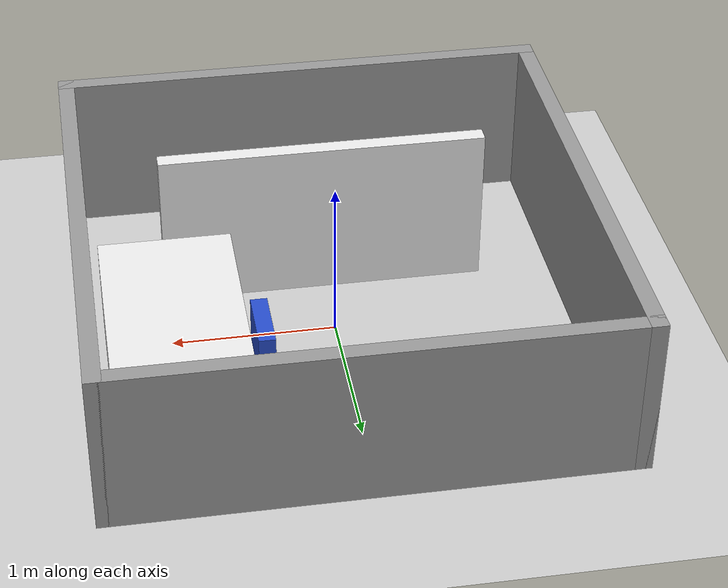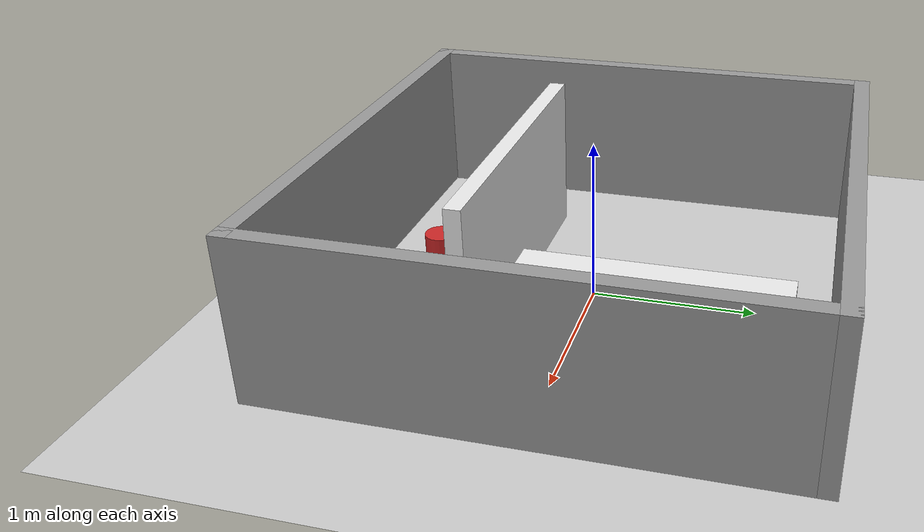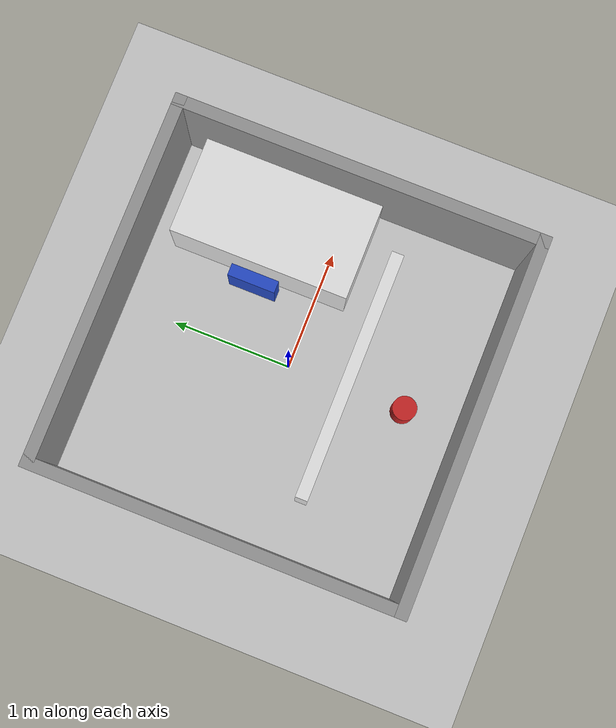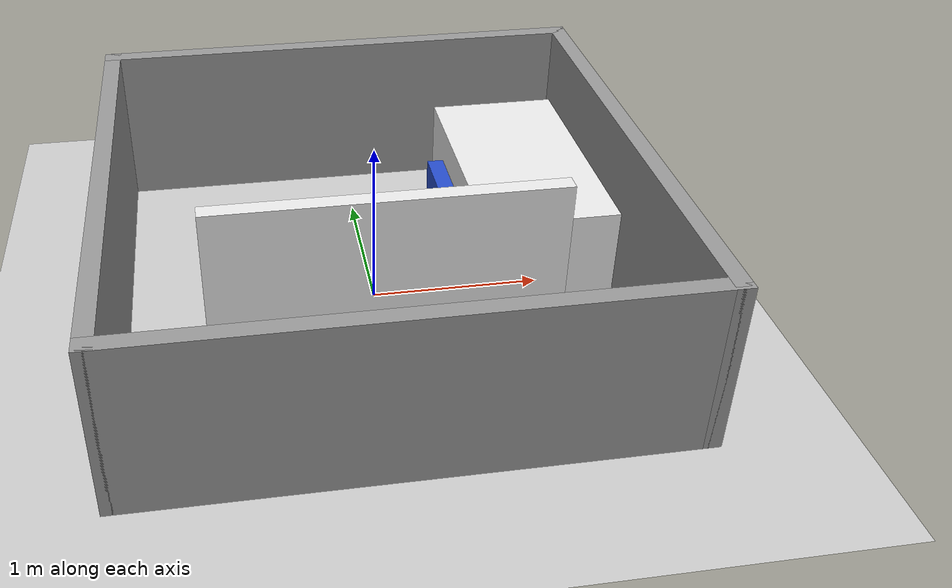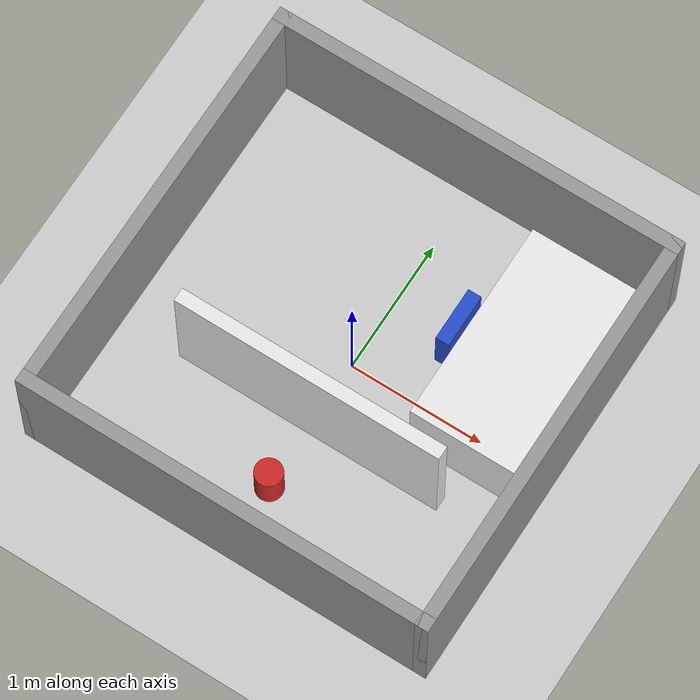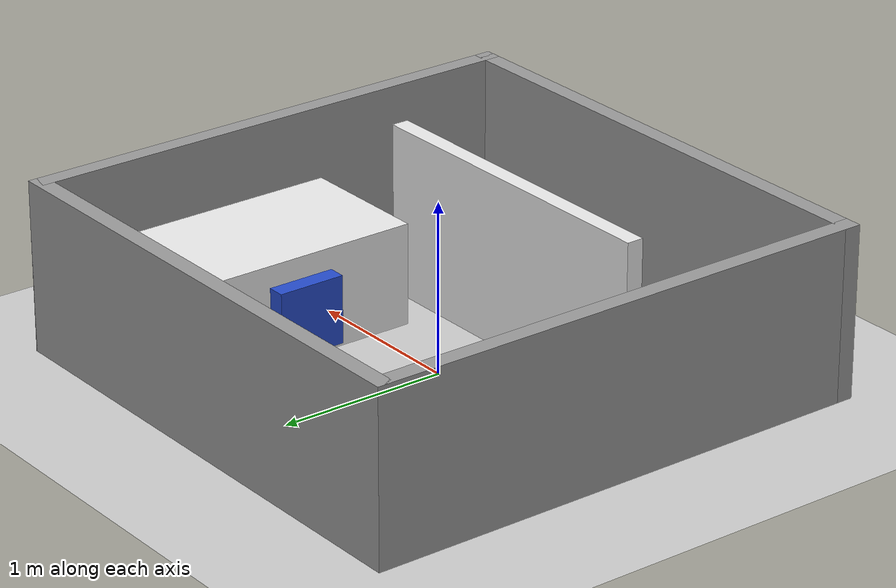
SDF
<?xml version="1.0" ?>
<sdf version="1.6">
  <world name="hospital_env">
    <include>
      <uri>model://sun</uri>
    </include>
    <include>
      <uri>model://ground_plane</uri>
    </include>

    <!-- 외벽 (3m x 3m 내외) -->
    <model name="wall_outer_1">
      <pose>0 1.5 0.5 0 0 0</pose>
      <link name="link">
        <collision name="collision"><geometry><box><size>3.1 0.1 1</size></box></geometry></collision>
        <visual name="visual">
          <geometry><box><size>3.1 0.1 1</size></box></geometry>
          <material><script><name>Gazebo/Grey</name></script></material>
        </visual>
      </link>
      <static>true</static>
    </model>
    <model name="wall_outer_2">
      <pose>0 -1.5 0.5 0 0 0</pose>
      <link name="link">
        <collision name="collision"><geometry><box><size>3.1 0.1 1</size></box></geometry></collision>
        <visual name="visual">
          <geometry><box><size>3.1 0.1 1</size></box></geometry>
          <material><script><name>Gazebo/Grey</name></script></material>
        </visual>
      </link>
      <static>true</static>
    </model>
    <model name="wall_outer_3">
      <pose>1.5 0 0.5 0 0 1.5708</pose>
      <link name="link">
        <collision name="collision"><geometry><box><size>3.1 0.1 1</size></box></geometry></collision>
        <visual name="visual">
          <geometry><box><size>3.1 0.1 1</size></box></geometry>
          <material><script><name>Gazebo/Grey</name></script></material>
        </visual>
      </link>
      <static>true</static>
    </model>
    <model name="wall_outer_4">
      <pose>-1.5 0 0.5 0 0 1.5708</pose>
      <link name="link">
        <collision name="collision"><geometry><box><size>3.1 0.1 1</size></box></geometry></collision>
        <visual name="visual">
          <geometry><box><size>3.1 0.1 1</size></box></geometry>
          <material><script><name>Gazebo/Grey</name></script></material>
        </visual>
      </link>
      <static>true</static>
    </model>

    <!-- 복도용 칸막이 벽 -->
    <model name="wall_inner">
      <pose>0 -0.5 0.5 0 0 0</pose>
      <link name="link">
        <collision name="collision"><geometry><box><size>2 0.1 1</size></box></geometry></collision>
        <visual name="visual">
          <geometry><box><size>2 0.1 1</size></box></geometry>
          <material><script><name>Gazebo/White</name></script></material>
        </visual>
      </link>
      <static>true</static>
    </model>

    <!-- ⭐️ 시나리오 2 핵심: 라이다 사각지대용 스텔스 장애물 (높이 30cm, 반지름 10cm로 축소) -->
    <model name="obstacle_person">
      <pose>0 -1.0 0.15 0 0 0</pose>
      <link name="link">
        <!-- 기존 radius 0.2에서 0.1로 50% 축소 -->
        <collision name="collision"><geometry><cylinder><radius>0.1</radius><length>0.3</length></cylinder></geometry></collision>
        <visual name="visual">
          <geometry><cylinder><radius>0.1</radius><length>0.3</length></cylinder></geometry>
          <material><script><name>Gazebo/Red</name></script></material>
        </visual>
      </link>
      <static>true</static>
    </model>

    <!-- 시나리오 3 병실 및 침대 -->
    <model name="hospital_bed">
      <pose>1.0 0.5 0.3 0 0 0</pose>
      <link name="link">
        <collision name="collision"><geometry><box><size>0.8 1.5 0.6</size></box></geometry></collision>
        <visual name="visual">
          <geometry><box><size>0.8 1.5 0.6</size></box></geometry>
          <material><script><name>Gazebo/White</name></script></material>
        </visual>
      </link>
      <static>true</static>
    </model>

    <!-- 시나리오 3 도킹 목표 지점 (ArUco 마커 대용) -->
    <model name="docking_target">
      <pose>0.5 0.5 0.3 0 0 0</pose>
      <link name="link">
        <collision name="collision"><geometry><box><size>0.1 0.4 0.4</size></box></geometry></collision>
        <visual name="visual">
          <geometry><box><size>0.1 0.4 0.4</size></box></geometry>
          <material><script><name>Gazebo/Blue</name></script></material>
        </visual>
      </link>
      <static>true</static>
    </model>
  </world>
</sdf>
